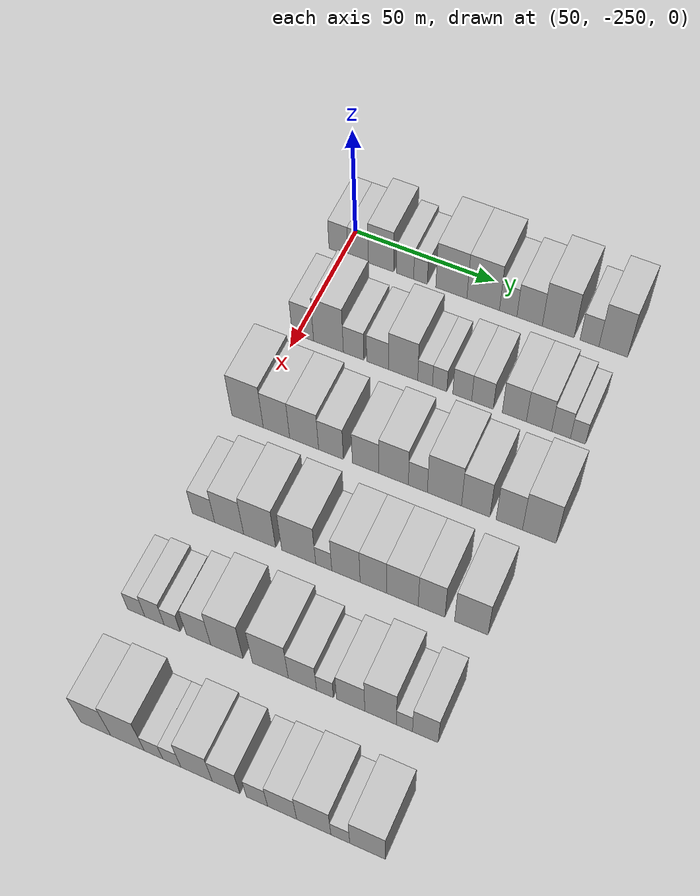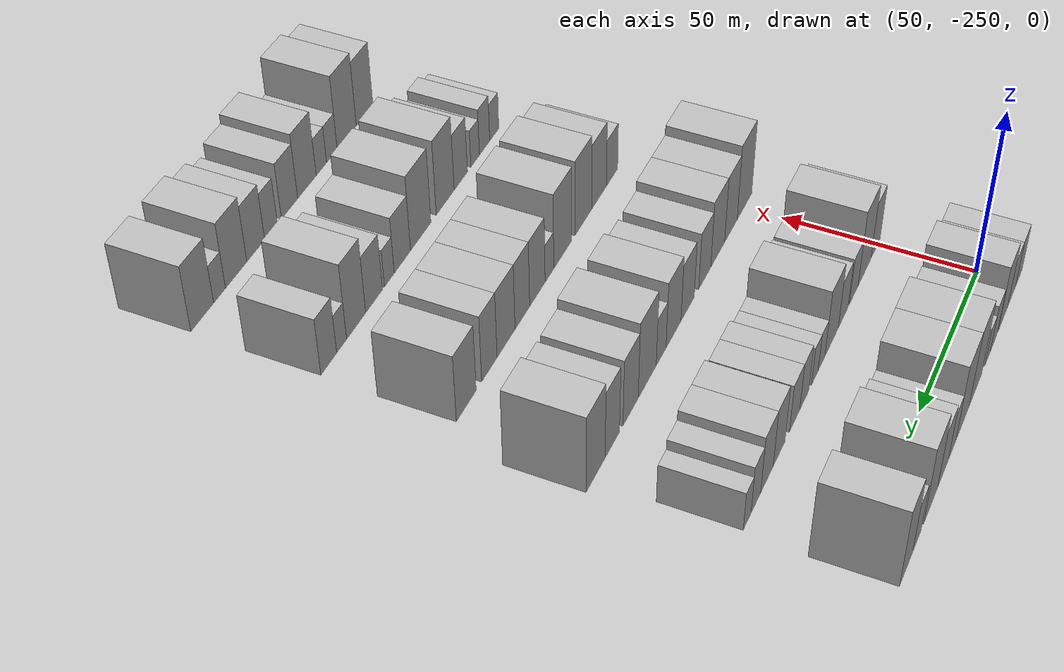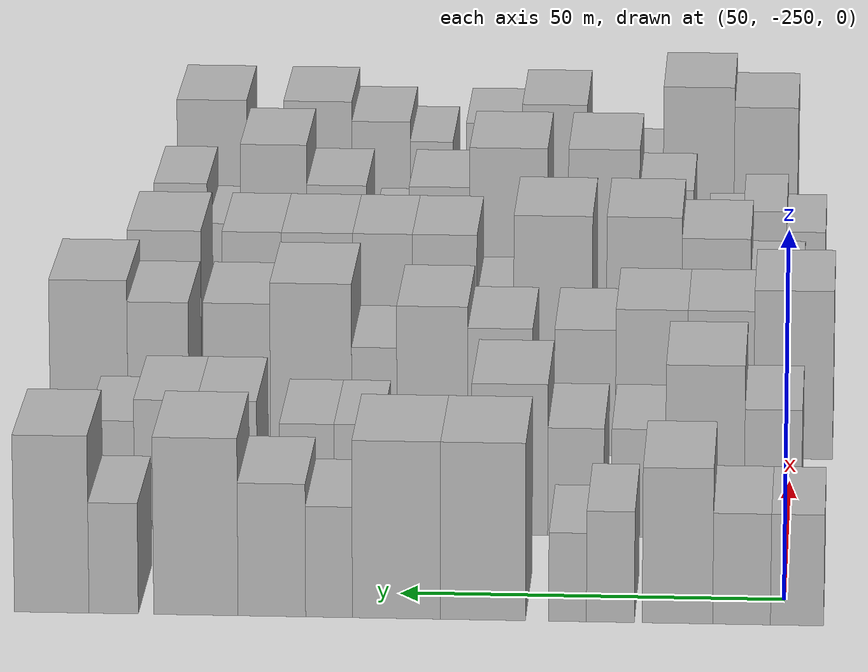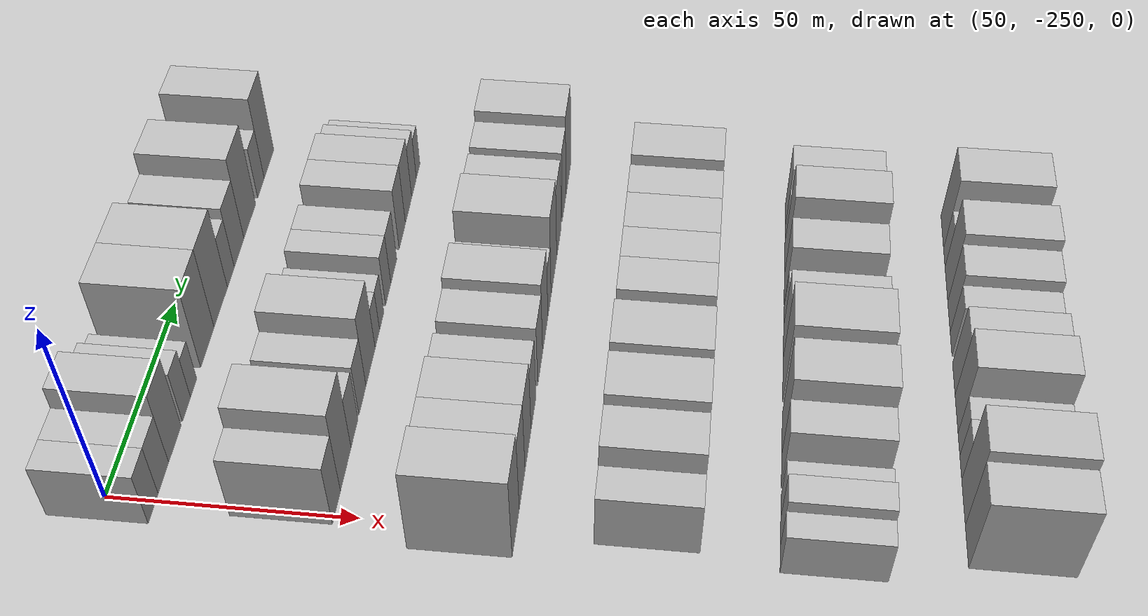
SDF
<sdf version="1.6">
 <world name="default">
  <model name="building_32">
   <static>1</static>
   <pose>50.0000 -251.7144 0 0.000000 0.000000 0.000000</pose>
   <link name="link">
    <pose>0 0 7.50 0 0 0</pose>
    <collision name="collision"><geometry><box><size>20.0000 6.8331 15.0000</size></box></geometry></collision>
    <visual name="visual">
     <cast_shadows>0</cast_shadows>
     <geometry><box><size>20.0000 6.8331 15.0000</size></box></geometry>
     <material>
      <script>
       <uri>model://HANNAS_wall/materials/scripts</uri>
       <uri>model://HANNAS_wall/materials/textures</uri>
       <name>vrc/HANNAS_wall</name>
      </script>
     </material>
    </visual>
   </link>
  </model>
  <model name="building_33">
   <static>1</static>
   <pose>50.0000 -244.5777 0 0.000000 0.000000 0.000000</pose>
   <link name="link">
    <pose>0 0 7.50 0 0 0</pose>
    <collision name="collision"><geometry><box><size>20.0000 7.4403 15.0000</size></box></geometry></collision>
    <visual name="visual">
     <cast_shadows>0</cast_shadows>
     <geometry><box><size>20.0000 7.4403 15.0000</size></box></geometry>
     <material>
      <script>
       <uri>model://HANNAS_wall/materials/scripts</uri>
       <uri>model://HANNAS_wall/materials/textures</uri>
       <name>vrc/HANNAS_wall</name>
      </script>
     </material>
    </visual>
   </link>
  </model>
  <model name="building_34">
   <static>1</static>
   <pose>50.0000 -236.3153 0 0.000000 0.000000 0.000000</pose>
   <link name="link">
    <pose>0 0 10.50 0 0 0</pose>
    <collision name="collision"><geometry><box><size>20.0000 9.0846 21.0000</size></box></geometry></collision>
    <visual name="visual">
     <cast_shadows>0</cast_shadows>
     <geometry><box><size>20.0000 9.0846 21.0000</size></box></geometry>
     <material>
      <script>
       <uri>model://HANNAS_wall/materials/scripts</uri>
       <uri>model://HANNAS_wall/materials/textures</uri>
       <name>vrc/HANNAS_wall</name>
      </script>
     </material>
    </visual>
   </link>
  </model>
  <model name="building_35">
   <static>1</static>
   <pose>50.0000 -227.6796 0 0.000000 0.000000 0.000000</pose>
   <link name="link">
    <pose>0 0 7.50 0 0 0</pose>
    <collision name="collision"><geometry><box><size>20.0000 6.1867 15.0000</size></box></geometry></collision>
    <visual name="visual">
     <cast_shadows>0</cast_shadows>
     <geometry><box><size>20.0000 6.1867 15.0000</size></box></geometry>
     <material>
      <script>
       <uri>model://HANNAS_wall/materials/scripts</uri>
       <uri>model://HANNAS_wall/materials/textures</uri>
       <name>vrc/HANNAS_wall</name>
      </script>
     </material>
    </visual>
   </link>
  </model>
  <model name="building_36">
   <static>1</static>
   <pose>50.0000 -222.1558 0 0.000000 0.000000 0.000000</pose>
   <link name="link">
    <pose>0 0 6.00 0 0 0</pose>
    <collision name="collision"><geometry><box><size>20.0000 4.8609 12.0000</size></box></geometry></collision>
    <visual name="visual">
     <cast_shadows>0</cast_shadows>
     <geometry><box><size>20.0000 4.8609 12.0000</size></box></geometry>
     <material>
      <script>
       <uri>model://HANNAS_wall/materials/scripts</uri>
       <uri>model://HANNAS_wall/materials/textures</uri>
       <name>vrc/HANNAS_wall</name>
      </script>
     </material>
    </visual>
   </link>
  </model>
  <model name="building_37">
   <static>1</static>
   <pose>50.0000 -211.2451 0 0.000000 0.000000 0.000000</pose>
   <link name="link">
    <pose>0 0 12.00 0 0 0</pose>
    <collision name="collision"><geometry><box><size>20.0000 10.9604 24.0000</size></box></geometry></collision>
    <visual name="visual">
     <cast_shadows>0</cast_shadows>
     <geometry><box><size>20.0000 10.9604 24.0000</size></box></geometry>
     <material>
      <script>
       <uri>model://HANNAS_wall/materials/scripts</uri>
       <uri>model://HANNAS_wall/materials/textures</uri>
       <name>vrc/HANNAS_wall</name>
      </script>
     </material>
    </visual>
   </link>
  </model>
  <model name="building_38">
   <static>1</static>
   <pose>50.0000 -200.0655 0 0.000000 0.000000 0.000000</pose>
   <link name="link">
    <pose>0 0 12.00 0 0 0</pose>
    <collision name="collision"><geometry><box><size>20.0000 11.3989 24.0000</size></box></geometry></collision>
    <visual name="visual">
     <cast_shadows>0</cast_shadows>
     <geometry><box><size>20.0000 11.3989 24.0000</size></box></geometry>
     <material>
      <script>
       <uri>model://HANNAS_wall/materials/scripts</uri>
       <uri>model://HANNAS_wall/materials/textures</uri>
       <name>vrc/HANNAS_wall</name>
      </script>
     </material>
    </visual>
   </link>
  </model>
  <model name="building_39">
   <static>1</static>
   <pose>50.0000 -191.3466 0 0.000000 0.000000 0.000000</pose>
   <link name="link">
    <pose>0 0 7.50 0 0 0</pose>
    <collision name="collision"><geometry><box><size>20.0000 6.0390 15.0000</size></box></geometry></collision>
    <visual name="visual">
     <cast_shadows>0</cast_shadows>
     <geometry><box><size>20.0000 6.0390 15.0000</size></box></geometry>
     <material>
      <script>
       <uri>model://HANNAS_wall/materials/scripts</uri>
       <uri>model://HANNAS_wall/materials/textures</uri>
       <name>vrc/HANNAS_wall</name>
      </script>
     </material>
    </visual>
   </link>
  </model>
  <model name="building_40">
   <static>1</static>
   <pose>50.0000 -183.9538 0 0.000000 0.000000 0.000000</pose>
   <link name="link">
    <pose>0 0 9.00 0 0 0</pose>
    <collision name="collision"><geometry><box><size>20.0000 8.7467 18.0000</size></box></geometry></collision>
    <visual name="visual">
     <cast_shadows>0</cast_shadows>
     <geometry><box><size>20.0000 8.7467 18.0000</size></box></geometry>
     <material>
      <script>
       <uri>model://HANNAS_wall/materials/scripts</uri>
       <uri>model://HANNAS_wall/materials/textures</uri>
       <name>vrc/HANNAS_wall</name>
      </script>
     </material>
    </visual>
   </link>
  </model>
  <model name="building_41">
   <static>1</static>
   <pose>50.0000 -174.1147 0 0.000000 0.000000 0.000000</pose>
   <link name="link">
    <pose>0 0 12.00 0 0 0</pose>
    <collision name="collision"><geometry><box><size>20.0000 10.9314 24.0000</size></box></geometry></collision>
    <visual name="visual">
     <cast_shadows>0</cast_shadows>
     <geometry><box><size>20.0000 10.9314 24.0000</size></box></geometry>
     <material>
      <script>
       <uri>model://HANNAS_wall/materials/scripts</uri>
       <uri>model://HANNAS_wall/materials/textures</uri>
       <name>vrc/HANNAS_wall</name>
      </script>
     </material>
    </visual>
   </link>
  </model>
  <model name="building_42">
   <static>1</static>
   <pose>50.0000 -163.4517 0 0.000000 0.000000 0.000000</pose>
   <link name="link">
    <pose>0 0 7.50 0 0 0</pose>
    <collision name="collision"><geometry><box><size>20.0000 6.3946 15.0000</size></box></geometry></collision>
    <visual name="visual">
     <cast_shadows>0</cast_shadows>
     <geometry><box><size>20.0000 6.3946 15.0000</size></box></geometry>
     <material>
      <script>
       <uri>model://HANNAS_wall/materials/scripts</uri>
       <uri>model://HANNAS_wall/materials/textures</uri>
       <name>vrc/HANNAS_wall</name>
      </script>
     </material>
    </visual>
   </link>
  </model>
  <model name="building_43">
   <static>1</static>
   <pose>50.0000 -155.4158 0 0.000000 0.000000 0.000000</pose>
   <link name="link">
    <pose>0 0 12.00 0 0 0</pose>
    <collision name="collision"><geometry><box><size>20.0000 9.6773 24.0000</size></box></geometry></collision>
    <visual name="visual">
     <cast_shadows>0</cast_shadows>
     <geometry><box><size>20.0000 9.6773 24.0000</size></box></geometry>
     <material>
      <script>
       <uri>model://HANNAS_wall/materials/scripts</uri>
       <uri>model://HANNAS_wall/materials/textures</uri>
       <name>vrc/HANNAS_wall</name>
      </script>
     </material>
    </visual>
   </link>
  </model>
  <model name="building_165">
   <static>1</static>
   <pose>85.0000 -248.0324 0 0.000000 0.000000 0.000000</pose>
   <link name="link">
    <pose>0 0 9.00 0 0 0</pose>
    <collision name="collision"><geometry><box><size>20.0000 7.6123 18.0000</size></box></geometry></collision>
    <visual name="visual">
     <cast_shadows>0</cast_shadows>
     <geometry><box><size>20.0000 7.6123 18.0000</size></box></geometry>
     <material>
      <script>
       <uri>model://HANNAS_wall/materials/scripts</uri>
       <uri>model://HANNAS_wall/materials/textures</uri>
       <name>vrc/HANNAS_wall</name>
      </script>
     </material>
    </visual>
   </link>
  </model>
  <model name="building_166">
   <static>1</static>
   <pose>85.0000 -238.9923 0 0.000000 0.000000 0.000000</pose>
   <link name="link">
    <pose>0 0 12.00 0 0 0</pose>
    <collision name="collision"><geometry><box><size>20.0000 10.4679 24.0000</size></box></geometry></collision>
    <visual name="visual">
     <cast_shadows>0</cast_shadows>
     <geometry><box><size>20.0000 10.4679 24.0000</size></box></geometry>
     <material>
      <script>
       <uri>model://HANNAS_wall/materials/scripts</uri>
       <uri>model://HANNAS_wall/materials/textures</uri>
       <name>vrc/HANNAS_wall</name>
      </script>
     </material>
    </visual>
   </link>
  </model>
  <model name="building_167">
   <static>1</static>
   <pose>85.0000 -230.1876 0 0.000000 0.000000 0.000000</pose>
   <link name="link">
    <pose>0 0 7.50 0 0 0</pose>
    <collision name="collision"><geometry><box><size>20.0000 7.1414 15.0000</size></box></geometry></collision>
    <visual name="visual">
     <cast_shadows>0</cast_shadows>
     <geometry><box><size>20.0000 7.1414 15.0000</size></box></geometry>
     <material>
      <script>
       <uri>model://HANNAS_wall/materials/scripts</uri>
       <uri>model://HANNAS_wall/materials/textures</uri>
       <name>vrc/HANNAS_wall</name>
      </script>
     </material>
    </visual>
   </link>
  </model>
  <model name="building_168">
   <static>1</static>
   <pose>85.0000 -221.8783 0 0.000000 0.000000 0.000000</pose>
   <link name="link">
    <pose>0 0 7.50 0 0 0</pose>
    <collision name="collision"><geometry><box><size>20.0000 7.4772 15.0000</size></box></geometry></collision>
    <visual name="visual">
     <cast_shadows>0</cast_shadows>
     <geometry><box><size>20.0000 7.4772 15.0000</size></box></geometry>
     <material>
      <script>
       <uri>model://HANNAS_wall/materials/scripts</uri>
       <uri>model://HANNAS_wall/materials/textures</uri>
       <name>vrc/HANNAS_wall</name>
      </script>
     </material>
    </visual>
   </link>
  </model>
  <model name="building_169">
   <static>1</static>
   <pose>85.0000 -213.0782 0 0.000000 0.000000 0.000000</pose>
   <link name="link">
    <pose>0 0 10.50 0 0 0</pose>
    <collision name="collision"><geometry><box><size>20.0000 10.1231 21.0000</size></box></geometry></collision>
    <visual name="visual">
     <cast_shadows>0</cast_shadows>
     <geometry><box><size>20.0000 10.1231 21.0000</size></box></geometry>
     <material>
      <script>
       <uri>model://HANNAS_wall/materials/scripts</uri>
       <uri>model://HANNAS_wall/materials/textures</uri>
       <name>vrc/HANNAS_wall</name>
      </script>
     </material>
    </visual>
   </link>
  </model>
  <model name="building_170">
   <static>1</static>
   <pose>85.0000 -205.4918 0 0.000000 0.000000 0.000000</pose>
   <link name="link">
    <pose>0 0 6.00 0 0 0</pose>
    <collision name="collision"><geometry><box><size>20.0000 5.0495 12.0000</size></box></geometry></collision>
    <visual name="visual">
     <cast_shadows>0</cast_shadows>
     <geometry><box><size>20.0000 5.0495 12.0000</size></box></geometry>
     <material>
      <script>
       <uri>model://HANNAS_wall/materials/scripts</uri>
       <uri>model://HANNAS_wall/materials/textures</uri>
       <name>vrc/HANNAS_wall</name>
      </script>
     </material>
    </visual>
   </link>
  </model>
  <model name="building_171">
   <static>1</static>
   <pose>85.0000 -200.5235 0 0.000000 0.000000 0.000000</pose>
   <link name="link">
    <pose>0 0 6.00 0 0 0</pose>
    <collision name="collision"><geometry><box><size>20.0000 4.8871 12.0000</size></box></geometry></collision>
    <visual name="visual">
     <cast_shadows>0</cast_shadows>
     <geometry><box><size>20.0000 4.8871 12.0000</size></box></geometry>
     <material>
      <script>
       <uri>model://HANNAS_wall/materials/scripts</uri>
       <uri>model://HANNAS_wall/materials/textures</uri>
       <name>vrc/HANNAS_wall</name>
      </script>
     </material>
    </visual>
   </link>
  </model>
  <model name="building_172">
   <static>1</static>
   <pose>85.0000 -192.8807 0 0.000000 0.000000 0.000000</pose>
   <link name="link">
    <pose>0 0 7.50 0 0 0</pose>
    <collision name="collision"><geometry><box><size>20.0000 6.3985 15.0000</size></box></geometry></collision>
    <visual name="visual">
     <cast_shadows>0</cast_shadows>
     <geometry><box><size>20.0000 6.3985 15.0000</size></box></geometry>
     <material>
      <script>
       <uri>model://HANNAS_wall/materials/scripts</uri>
       <uri>model://HANNAS_wall/materials/textures</uri>
       <name>vrc/HANNAS_wall</name>
      </script>
     </material>
    </visual>
   </link>
  </model>
  <model name="building_173">
   <static>1</static>
   <pose>85.0000 -186.0462 0 0.000000 0.000000 0.000000</pose>
   <link name="link">
    <pose>0 0 7.50 0 0 0</pose>
    <collision name="collision"><geometry><box><size>20.0000 7.2704 15.0000</size></box></geometry></collision>
    <visual name="visual">
     <cast_shadows>0</cast_shadows>
     <geometry><box><size>20.0000 7.2704 15.0000</size></box></geometry>
     <material>
      <script>
       <uri>model://HANNAS_wall/materials/scripts</uri>
       <uri>model://HANNAS_wall/materials/textures</uri>
       <name>vrc/HANNAS_wall</name>
      </script>
     </material>
    </visual>
   </link>
  </model>
  <model name="building_174">
   <static>1</static>
   <pose>85.0000 -175.4038 0 0.000000 0.000000 0.000000</pose>
   <link name="link">
    <pose>0 0 9.00 0 0 0</pose>
    <collision name="collision"><geometry><box><size>20.0000 8.0144 18.0000</size></box></geometry></collision>
    <visual name="visual">
     <cast_shadows>0</cast_shadows>
     <geometry><box><size>20.0000 8.0144 18.0000</size></box></geometry>
     <material>
      <script>
       <uri>model://HANNAS_wall/materials/scripts</uri>
       <uri>model://HANNAS_wall/materials/textures</uri>
       <name>vrc/HANNAS_wall</name>
      </script>
     </material>
    </visual>
   </link>
  </model>
  <model name="building_175">
   <static>1</static>
   <pose>85.0000 -167.2117 0 0.000000 0.000000 0.000000</pose>
   <link name="link">
    <pose>0 0 9.00 0 0 0</pose>
    <collision name="collision"><geometry><box><size>20.0000 8.3697 18.0000</size></box></geometry></collision>
    <visual name="visual">
     <cast_shadows>0</cast_shadows>
     <geometry><box><size>20.0000 8.3697 18.0000</size></box></geometry>
     <material>
      <script>
       <uri>model://HANNAS_wall/materials/scripts</uri>
       <uri>model://HANNAS_wall/materials/textures</uri>
       <name>vrc/HANNAS_wall</name>
      </script>
     </material>
    </visual>
   </link>
  </model>
  <model name="building_176">
   <static>1</static>
   <pose>85.0000 -159.9130 0 0.000000 0.000000 0.000000</pose>
   <link name="link">
    <pose>0 0 7.50 0 0 0</pose>
    <collision name="collision"><geometry><box><size>20.0000 6.2277 15.0000</size></box></geometry></collision>
    <visual name="visual">
     <cast_shadows>0</cast_shadows>
     <geometry><box><size>20.0000 6.2277 15.0000</size></box></geometry>
     <material>
      <script>
       <uri>model://HANNAS_wall/materials/scripts</uri>
       <uri>model://HANNAS_wall/materials/textures</uri>
       <name>vrc/HANNAS_wall</name>
      </script>
     </material>
    </visual>
   </link>
  </model>
  <model name="building_177">
   <static>1</static>
   <pose>85.0000 -154.3391 0 0.000000 0.000000 0.000000</pose>
   <link name="link">
    <pose>0 0 6.00 0 0 0</pose>
    <collision name="collision"><geometry><box><size>20.0000 4.9201 12.0000</size></box></geometry></collision>
    <visual name="visual">
     <cast_shadows>0</cast_shadows>
     <geometry><box><size>20.0000 4.9201 12.0000</size></box></geometry>
     <material>
      <script>
       <uri>model://HANNAS_wall/materials/scripts</uri>
       <uri>model://HANNAS_wall/materials/textures</uri>
       <name>vrc/HANNAS_wall</name>
      </script>
     </material>
    </visual>
   </link>
  </model>
  <model name="building_299">
   <static>1</static>
   <pose>120.0000 -250.2972 0 0.000000 0.000000 0.000000</pose>
   <link name="link">
    <pose>0 0 12.00 0 0 0</pose>
    <collision name="collision"><geometry><box><size>20.0000 10.8491 24.0000</size></box></geometry></collision>
    <visual name="visual">
     <cast_shadows>0</cast_shadows>
     <geometry><box><size>20.0000 10.8491 24.0000</size></box></geometry>
     <material>
      <script>
       <uri>model://HANNAS_wall/materials/scripts</uri>
       <uri>model://HANNAS_wall/materials/textures</uri>
       <name>vrc/HANNAS_wall</name>
      </script>
     </material>
    </visual>
   </link>
  </model>
  <model name="building_300">
   <static>1</static>
   <pose>120.0000 -240.3386 0 0.000000 0.000000 0.000000</pose>
   <link name="link">
    <pose>0 0 10.50 0 0 0</pose>
    <collision name="collision"><geometry><box><size>20.0000 9.0683 21.0000</size></box></geometry></collision>
    <visual name="visual">
     <cast_shadows>0</cast_shadows>
     <geometry><box><size>20.0000 9.0683 21.0000</size></box></geometry>
     <material>
      <script>
       <uri>model://HANNAS_wall/materials/scripts</uri>
       <uri>model://HANNAS_wall/materials/textures</uri>
       <name>vrc/HANNAS_wall</name>
      </script>
     </material>
    </visual>
   </link>
  </model>
  <model name="building_301">
   <static>1</static>
   <pose>120.0000 -230.8886 0 0.000000 0.000000 0.000000</pose>
   <link name="link">
    <pose>0 0 10.50 0 0 0</pose>
    <collision name="collision"><geometry><box><size>20.0000 9.8317 21.0000</size></box></geometry></collision>
    <visual name="visual">
     <cast_shadows>0</cast_shadows>
     <geometry><box><size>20.0000 9.8317 21.0000</size></box></geometry>
     <material>
      <script>
       <uri>model://HANNAS_wall/materials/scripts</uri>
       <uri>model://HANNAS_wall/materials/textures</uri>
       <name>vrc/HANNAS_wall</name>
      </script>
     </material>
    </visual>
   </link>
  </model>
  <model name="building_302">
   <static>1</static>
   <pose>120.0000 -221.7825 0 0.000000 0.000000 0.000000</pose>
   <link name="link">
    <pose>0 0 9.00 0 0 0</pose>
    <collision name="collision"><geometry><box><size>20.0000 8.3805 18.0000</size></box></geometry></collision>
    <visual name="visual">
     <cast_shadows>0</cast_shadows>
     <geometry><box><size>20.0000 8.3805 18.0000</size></box></geometry>
     <material>
      <script>
       <uri>model://HANNAS_wall/materials/scripts</uri>
       <uri>model://HANNAS_wall/materials/textures</uri>
       <name>vrc/HANNAS_wall</name>
      </script>
     </material>
    </visual>
   </link>
  </model>
  <model name="building_303">
   <static>1</static>
   <pose>120.0000 -210.1530 0 0.000000 0.000000 0.000000</pose>
   <link name="link">
    <pose>0 0 9.00 0 0 0</pose>
    <collision name="collision"><geometry><box><size>20.0000 8.8785 18.0000</size></box></geometry></collision>
    <visual name="visual">
     <cast_shadows>0</cast_shadows>
     <geometry><box><size>20.0000 8.8785 18.0000</size></box></geometry>
     <material>
      <script>
       <uri>model://HANNAS_wall/materials/scripts</uri>
       <uri>model://HANNAS_wall/materials/textures</uri>
       <name>vrc/HANNAS_wall</name>
      </script>
     </material>
    </visual>
   </link>
  </model>
  <model name="building_304">
   <static>1</static>
   <pose>120.0000 -200.8392 0 0.000000 0.000000 0.000000</pose>
   <link name="link">
    <pose>0 0 10.50 0 0 0</pose>
    <collision name="collision"><geometry><box><size>20.0000 9.7490 21.0000</size></box></geometry></collision>
    <visual name="visual">
     <cast_shadows>0</cast_shadows>
     <geometry><box><size>20.0000 9.7490 21.0000</size></box></geometry>
     <material>
      <script>
       <uri>model://HANNAS_wall/materials/scripts</uri>
       <uri>model://HANNAS_wall/materials/textures</uri>
       <name>vrc/HANNAS_wall</name>
      </script>
     </material>
    </visual>
   </link>
  </model>
  <model name="building_305">
   <static>1</static>
   <pose>120.0000 -192.8650 0 0.000000 0.000000 0.000000</pose>
   <link name="link">
    <pose>0 0 7.50 0 0 0</pose>
    <collision name="collision"><geometry><box><size>20.0000 6.1994 15.0000</size></box></geometry></collision>
    <visual name="visual">
     <cast_shadows>0</cast_shadows>
     <geometry><box><size>20.0000 6.1994 15.0000</size></box></geometry>
     <material>
      <script>
       <uri>model://HANNAS_wall/materials/scripts</uri>
       <uri>model://HANNAS_wall/materials/textures</uri>
       <name>vrc/HANNAS_wall</name>
      </script>
     </material>
    </visual>
   </link>
  </model>
  <model name="building_306">
   <static>1</static>
   <pose>120.0000 -184.1727 0 0.000000 0.000000 0.000000</pose>
   <link name="link">
    <pose>0 0 12.00 0 0 0</pose>
    <collision name="collision"><geometry><box><size>20.0000 11.1850 24.0000</size></box></geometry></collision>
    <visual name="visual">
     <cast_shadows>0</cast_shadows>
     <geometry><box><size>20.0000 11.1850 24.0000</size></box></geometry>
     <material>
      <script>
       <uri>model://HANNAS_wall/materials/scripts</uri>
       <uri>model://HANNAS_wall/materials/textures</uri>
       <name>vrc/HANNAS_wall</name>
      </script>
     </material>
    </visual>
   </link>
  </model>
  <model name="building_307">
   <static>1</static>
   <pose>120.0000 -173.9789 0 0.000000 0.000000 0.000000</pose>
   <link name="link">
    <pose>0 0 10.50 0 0 0</pose>
    <collision name="collision"><geometry><box><size>20.0000 9.2027 21.0000</size></box></geometry></collision>
    <visual name="visual">
     <cast_shadows>0</cast_shadows>
     <geometry><box><size>20.0000 9.2027 21.0000</size></box></geometry>
     <material>
      <script>
       <uri>model://HANNAS_wall/materials/scripts</uri>
       <uri>model://HANNAS_wall/materials/textures</uri>
       <name>vrc/HANNAS_wall</name>
      </script>
     </material>
    </visual>
   </link>
  </model>
  <model name="building_308">
   <static>1</static>
   <pose>120.0000 -163.1730 0 0.000000 0.000000 0.000000</pose>
   <link name="link">
    <pose>0 0 10.50 0 0 0</pose>
    <collision name="collision"><geometry><box><size>20.0000 8.4091 21.0000</size></box></geometry></collision>
    <visual name="visual">
     <cast_shadows>0</cast_shadows>
     <geometry><box><size>20.0000 8.4091 21.0000</size></box></geometry>
     <material>
      <script>
       <uri>model://HANNAS_wall/materials/scripts</uri>
       <uri>model://HANNAS_wall/materials/textures</uri>
       <name>vrc/HANNAS_wall</name>
      </script>
     </material>
    </visual>
   </link>
  </model>
  <model name="building_309">
   <static>1</static>
   <pose>120.0000 -153.6084 0 0.000000 0.000000 0.000000</pose>
   <link name="link">
    <pose>0 0 12.00 0 0 0</pose>
    <collision name="collision"><geometry><box><size>20.0000 10.7200 24.0000</size></box></geometry></collision>
    <visual name="visual">
     <cast_shadows>0</cast_shadows>
     <geometry><box><size>20.0000 10.7200 24.0000</size></box></geometry>
     <material>
      <script>
       <uri>model://HANNAS_wall/materials/scripts</uri>
       <uri>model://HANNAS_wall/materials/textures</uri>
       <name>vrc/HANNAS_wall</name>
      </script>
     </material>
    </visual>
   </link>
  </model>
  <model name="building_422">
   <static>1</static>
   <pose>155.0000 -247.5163 0 0.000000 0.000000 0.000000</pose>
   <link name="link">
    <pose>0 0 7.50 0 0 0</pose>
    <collision name="collision"><geometry><box><size>20.0000 7.4893 15.0000</size></box></geometry></collision>
    <visual name="visual">
     <cast_shadows>0</cast_shadows>
     <geometry><box><size>20.0000 7.4893 15.0000</size></box></geometry>
     <material>
      <script>
       <uri>model://HANNAS_wall/materials/scripts</uri>
       <uri>model://HANNAS_wall/materials/textures</uri>
       <name>vrc/HANNAS_wall</name>
      </script>
     </material>
    </visual>
   </link>
  </model>
  <model name="building_423">
   <static>1</static>
   <pose>155.0000 -238.9331 0 0.000000 0.000000 0.000000</pose>
   <link name="link">
    <pose>0 0 10.50 0 0 0</pose>
    <collision name="collision"><geometry><box><size>20.0000 9.6772 21.0000</size></box></geometry></collision>
    <visual name="visual">
     <cast_shadows>0</cast_shadows>
     <geometry><box><size>20.0000 9.6772 21.0000</size></box></geometry>
     <material>
      <script>
       <uri>model://HANNAS_wall/materials/scripts</uri>
       <uri>model://HANNAS_wall/materials/textures</uri>
       <name>vrc/HANNAS_wall</name>
      </script>
     </material>
    </visual>
   </link>
  </model>
  <model name="building_424">
   <static>1</static>
   <pose>155.0000 -228.8019 0 0.000000 0.000000 0.000000</pose>
   <link name="link">
    <pose>0 0 12.00 0 0 0</pose>
    <collision name="collision"><geometry><box><size>20.0000 10.5852 24.0000</size></box></geometry></collision>
    <visual name="visual">
     <cast_shadows>0</cast_shadows>
     <geometry><box><size>20.0000 10.5852 24.0000</size></box></geometry>
     <material>
      <script>
       <uri>model://HANNAS_wall/materials/scripts</uri>
       <uri>model://HANNAS_wall/materials/textures</uri>
       <name>vrc/HANNAS_wall</name>
      </script>
     </material>
    </visual>
   </link>
  </model>
  <model name="building_425">
   <static>1</static>
   <pose>155.0000 -215.9623 0 0.000000 0.000000 0.000000</pose>
   <link name="link">
    <pose>0 0 12.00 0 0 0</pose>
    <collision name="collision"><geometry><box><size>20.0000 11.0940 24.0000</size></box></geometry></collision>
    <visual name="visual">
     <cast_shadows>0</cast_shadows>
     <geometry><box><size>20.0000 11.0940 24.0000</size></box></geometry>
     <material>
      <script>
       <uri>model://HANNAS_wall/materials/scripts</uri>
       <uri>model://HANNAS_wall/materials/textures</uri>
       <name>vrc/HANNAS_wall</name>
      </script>
     </material>
    </visual>
   </link>
  </model>
  <model name="building_426">
   <static>1</static>
   <pose>155.0000 -207.8113 0 0.000000 0.000000 0.000000</pose>
   <link name="link">
    <pose>0 0 6.00 0 0 0</pose>
    <collision name="collision"><geometry><box><size>20.0000 5.2079 12.0000</size></box></geometry></collision>
    <visual name="visual">
     <cast_shadows>0</cast_shadows>
     <geometry><box><size>20.0000 5.2079 12.0000</size></box></geometry>
     <material>
      <script>
       <uri>model://HANNAS_wall/materials/scripts</uri>
       <uri>model://HANNAS_wall/materials/textures</uri>
       <name>vrc/HANNAS_wall</name>
      </script>
     </material>
    </visual>
   </link>
  </model>
  <model name="building_427">
   <static>1</static>
   <pose>155.0000 -200.6531 0 0.000000 0.000000 0.000000</pose>
   <link name="link">
    <pose>0 0 10.50 0 0 0</pose>
    <collision name="collision"><geometry><box><size>20.0000 9.1087 21.0000</size></box></geometry></collision>
    <visual name="visual">
     <cast_shadows>0</cast_shadows>
     <geometry><box><size>20.0000 9.1087 21.0000</size></box></geometry>
     <material>
      <script>
       <uri>model://HANNAS_wall/materials/scripts</uri>
       <uri>model://HANNAS_wall/materials/textures</uri>
       <name>vrc/HANNAS_wall</name>
      </script>
     </material>
    </visual>
   </link>
  </model>
  <model name="building_428">
   <static>1</static>
   <pose>155.0000 -191.8842 0 0.000000 0.000000 0.000000</pose>
   <link name="link">
    <pose>0 0 10.50 0 0 0</pose>
    <collision name="collision"><geometry><box><size>20.0000 8.4291 21.0000</size></box></geometry></collision>
    <visual name="visual">
     <cast_shadows>0</cast_shadows>
     <geometry><box><size>20.0000 8.4291 21.0000</size></box></geometry>
     <material>
      <script>
       <uri>model://HANNAS_wall/materials/scripts</uri>
       <uri>model://HANNAS_wall/materials/textures</uri>
       <name>vrc/HANNAS_wall</name>
      </script>
     </material>
    </visual>
   </link>
  </model>
  <model name="building_429">
   <static>1</static>
   <pose>155.0000 -182.6408 0 0.000000 0.000000 0.000000</pose>
   <link name="link">
    <pose>0 0 10.50 0 0 0</pose>
    <collision name="collision"><geometry><box><size>20.0000 10.0576 21.0000</size></box></geometry></collision>
    <visual name="visual">
     <cast_shadows>0</cast_shadows>
     <geometry><box><size>20.0000 10.0576 21.0000</size></box></geometry>
     <material>
      <script>
       <uri>model://HANNAS_wall/materials/scripts</uri>
       <uri>model://HANNAS_wall/materials/textures</uri>
       <name>vrc/HANNAS_wall</name>
      </script>
     </material>
    </visual>
   </link>
  </model>
  <model name="building_430">
   <static>1</static>
   <pose>155.0000 -173.4113 0 0.000000 0.000000 0.000000</pose>
   <link name="link">
    <pose>0 0 10.50 0 0 0</pose>
    <collision name="collision"><geometry><box><size>20.0000 8.4014 21.0000</size></box></geometry></collision>
    <visual name="visual">
     <cast_shadows>0</cast_shadows>
     <geometry><box><size>20.0000 8.4014 21.0000</size></box></geometry>
     <material>
      <script>
       <uri>model://HANNAS_wall/materials/scripts</uri>
       <uri>model://HANNAS_wall/materials/textures</uri>
       <name>vrc/HANNAS_wall</name>
      </script>
     </material>
    </visual>
   </link>
  </model>
  <model name="building_431">
   <static>1</static>
   <pose>155.0000 -160.9996 0 0.000000 0.000000 0.000000</pose>
   <link name="link">
    <pose>0 0 10.50 0 0 0</pose>
    <collision name="collision"><geometry><box><size>20.0000 10.4220 21.0000</size></box></geometry></collision>
    <visual name="visual">
     <cast_shadows>0</cast_shadows>
     <geometry><box><size>20.0000 10.4220 21.0000</size></box></geometry>
     <material>
      <script>
       <uri>model://HANNAS_wall/materials/scripts</uri>
       <uri>model://HANNAS_wall/materials/textures</uri>
       <name>vrc/HANNAS_wall</name>
      </script>
     </material>
    </visual>
   </link>
  </model>
  <model name="building_551">
   <static>1</static>
   <pose>190.0000 -251.2293 0 0.000000 0.000000 0.000000</pose>
   <link name="link">
    <pose>0 0 6.00 0 0 0</pose>
    <collision name="collision"><geometry><box><size>20.0000 5.6603 12.0000</size></box></geometry></collision>
    <visual name="visual">
     <cast_shadows>0</cast_shadows>
     <geometry><box><size>20.0000 5.6603 12.0000</size></box></geometry>
     <material>
      <script>
       <uri>model://HANNAS_wall/materials/scripts</uri>
       <uri>model://HANNAS_wall/materials/textures</uri>
       <name>vrc/HANNAS_wall</name>
      </script>
     </material>
    </visual>
   </link>
  </model>
  <model name="building_552">
   <static>1</static>
   <pose>190.0000 -245.2674 0 0.000000 0.000000 0.000000</pose>
   <link name="link">
    <pose>0 0 7.50 0 0 0</pose>
    <collision name="collision"><geometry><box><size>20.0000 6.2636 15.0000</size></box></geometry></collision>
    <visual name="visual">
     <cast_shadows>0</cast_shadows>
     <geometry><box><size>20.0000 6.2636 15.0000</size></box></geometry>
     <material>
      <script>
       <uri>model://HANNAS_wall/materials/scripts</uri>
       <uri>model://HANNAS_wall/materials/textures</uri>
       <name>vrc/HANNAS_wall</name>
      </script>
     </material>
    </visual>
   </link>
  </model>
  <model name="building_553">
   <static>1</static>
   <pose>190.0000 -239.5304 0 0.000000 0.000000 0.000000</pose>
   <link name="link">
    <pose>0 0 6.00 0 0 0</pose>
    <collision name="collision"><geometry><box><size>20.0000 5.2104 12.0000</size></box></geometry></collision>
    <visual name="visual">
     <cast_shadows>0</cast_shadows>
     <geometry><box><size>20.0000 5.2104 12.0000</size></box></geometry>
     <material>
      <script>
       <uri>model://HANNAS_wall/materials/scripts</uri>
       <uri>model://HANNAS_wall/materials/textures</uri>
       <name>vrc/HANNAS_wall</name>
      </script>
     </material>
    </visual>
   </link>
  </model>
  <model name="building_554">
   <static>1</static>
   <pose>190.0000 -230.9997 0 0.000000 0.000000 0.000000</pose>
   <link name="link">
    <pose>0 0 9.00 0 0 0</pose>
    <collision name="collision"><geometry><box><size>20.0000 7.8511 18.0000</size></box></geometry></collision>
    <visual name="visual">
     <cast_shadows>0</cast_shadows>
     <geometry><box><size>20.0000 7.8511 18.0000</size></box></geometry>
     <material>
      <script>
       <uri>model://HANNAS_wall/materials/scripts</uri>
       <uri>model://HANNAS_wall/materials/textures</uri>
       <name>vrc/HANNAS_wall</name>
      </script>
     </material>
    </visual>
   </link>
  </model>
  <model name="building_555">
   <static>1</static>
   <pose>190.0000 -221.9102 0 0.000000 0.000000 0.000000</pose>
   <link name="link">
    <pose>0 0 12.00 0 0 0</pose>
    <collision name="collision"><geometry><box><size>20.0000 10.3279 24.0000</size></box></geometry></collision>
    <visual name="visual">
     <cast_shadows>0</cast_shadows>
     <geometry><box><size>20.0000 10.3279 24.0000</size></box></geometry>
     <material>
      <script>
       <uri>model://HANNAS_wall/materials/scripts</uri>
       <uri>model://HANNAS_wall/materials/textures</uri>
       <name>vrc/HANNAS_wall</name>
      </script>
     </material>
    </visual>
   </link>
  </model>
  <model name="building_556">
   <static>1</static>
   <pose>190.0000 -208.0811 0 0.000000 0.000000 0.000000</pose>
   <link name="link">
    <pose>0 0 12.00 0 0 0</pose>
    <collision name="collision"><geometry><box><size>20.0000 11.3302 24.0000</size></box></geometry></collision>
    <visual name="visual">
     <cast_shadows>0</cast_shadows>
     <geometry><box><size>20.0000 11.3302 24.0000</size></box></geometry>
     <material>
      <script>
       <uri>model://HANNAS_wall/materials/scripts</uri>
       <uri>model://HANNAS_wall/materials/textures</uri>
       <name>vrc/HANNAS_wall</name>
      </script>
     </material>
    </visual>
   </link>
  </model>
  <model name="building_557">
   <static>1</static>
   <pose>190.0000 -198.0124 0 0.000000 0.000000 0.000000</pose>
   <link name="link">
    <pose>0 0 9.00 0 0 0</pose>
    <collision name="collision"><geometry><box><size>20.0000 8.8071 18.0000</size></box></geometry></collision>
    <visual name="visual">
     <cast_shadows>0</cast_shadows>
     <geometry><box><size>20.0000 8.8071 18.0000</size></box></geometry>
     <material>
      <script>
       <uri>model://HANNAS_wall/materials/scripts</uri>
       <uri>model://HANNAS_wall/materials/textures</uri>
       <name>vrc/HANNAS_wall</name>
      </script>
     </material>
    </visual>
   </link>
  </model>
  <model name="building_558">
   <static>1</static>
   <pose>190.0000 -190.9980 0 0.000000 0.000000 0.000000</pose>
   <link name="link">
    <pose>0 0 6.00 0 0 0</pose>
    <collision name="collision"><geometry><box><size>20.0000 5.2217 12.0000</size></box></geometry></collision>
    <visual name="visual">
     <cast_shadows>0</cast_shadows>
     <geometry><box><size>20.0000 5.2217 12.0000</size></box></geometry>
     <material>
      <script>
       <uri>model://HANNAS_wall/materials/scripts</uri>
       <uri>model://HANNAS_wall/materials/textures</uri>
       <name>vrc/HANNAS_wall</name>
      </script>
     </material>
    </visual>
   </link>
  </model>
  <model name="building_559">
   <static>1</static>
   <pose>190.0000 -183.0506 0 0.000000 0.000000 0.000000</pose>
   <link name="link">
    <pose>0 0 9.00 0 0 0</pose>
    <collision name="collision"><geometry><box><size>20.0000 8.6731 18.0000</size></box></geometry></collision>
    <visual name="visual">
     <cast_shadows>0</cast_shadows>
     <geometry><box><size>20.0000 8.6731 18.0000</size></box></geometry>
     <material>
      <script>
       <uri>model://HANNAS_wall/materials/scripts</uri>
       <uri>model://HANNAS_wall/materials/textures</uri>
       <name>vrc/HANNAS_wall</name>
      </script>
     </material>
    </visual>
   </link>
  </model>
  <model name="building_560">
   <static>1</static>
   <pose>190.0000 -173.8981 0 0.000000 0.000000 0.000000</pose>
   <link name="link">
    <pose>0 0 12.00 0 0 0</pose>
    <collision name="collision"><geometry><box><size>20.0000 9.6318 24.0000</size></box></geometry></collision>
    <visual name="visual">
     <cast_shadows>0</cast_shadows>
     <geometry><box><size>20.0000 9.6318 24.0000</size></box></geometry>
     <material>
      <script>
       <uri>model://HANNAS_wall/materials/scripts</uri>
       <uri>model://HANNAS_wall/materials/textures</uri>
       <name>vrc/HANNAS_wall</name>
      </script>
     </material>
    </visual>
   </link>
  </model>
  <model name="building_561">
   <static>1</static>
   <pose>190.0000 -166.6436 0 0.000000 0.000000 0.000000</pose>
   <link name="link">
    <pose>0 0 6.00 0 0 0</pose>
    <collision name="collision"><geometry><box><size>20.0000 4.8773 12.0000</size></box></geometry></collision>
    <visual name="visual">
     <cast_shadows>0</cast_shadows>
     <geometry><box><size>20.0000 4.8773 12.0000</size></box></geometry>
     <material>
      <script>
       <uri>model://HANNAS_wall/materials/scripts</uri>
       <uri>model://HANNAS_wall/materials/textures</uri>
       <name>vrc/HANNAS_wall</name>
      </script>
     </material>
    </visual>
   </link>
  </model>
  <model name="building_562">
   <static>1</static>
   <pose>190.0000 -160.3414 0 0.000000 0.000000 0.000000</pose>
   <link name="link">
    <pose>0 0 9.00 0 0 0</pose>
    <collision name="collision"><geometry><box><size>20.0000 7.7271 18.0000</size></box></geometry></collision>
    <visual name="visual">
     <cast_shadows>0</cast_shadows>
     <geometry><box><size>20.0000 7.7271 18.0000</size></box></geometry>
     <material>
      <script>
       <uri>model://HANNAS_wall/materials/scripts</uri>
       <uri>model://HANNAS_wall/materials/textures</uri>
       <name>vrc/HANNAS_wall</name>
      </script>
     </material>
    </visual>
   </link>
  </model>
  <model name="building_676">
   <static>1</static>
   <pose>225.0000 -244.8778 0 0.000000 0.000000 0.000000</pose>
   <link name="link">
    <pose>0 0 10.50 0 0 0</pose>
    <collision name="collision"><geometry><box><size>20.0000 9.4706 21.0000</size></box></geometry></collision>
    <visual name="visual">
     <cast_shadows>0</cast_shadows>
     <geometry><box><size>20.0000 9.4706 21.0000</size></box></geometry>
     <material>
      <script>
       <uri>model://HANNAS_wall/materials/scripts</uri>
       <uri>model://HANNAS_wall/materials/textures</uri>
       <name>vrc/HANNAS_wall</name>
      </script>
     </material>
    </visual>
   </link>
  </model>
  <model name="building_677">
   <static>1</static>
   <pose>225.0000 -234.8515 0 0.000000 0.000000 0.000000</pose>
   <link name="link">
    <pose>0 0 12.00 0 0 0</pose>
    <collision name="collision"><geometry><box><size>20.0000 10.5820 24.0000</size></box></geometry></collision>
    <visual name="visual">
     <cast_shadows>0</cast_shadows>
     <geometry><box><size>20.0000 10.5820 24.0000</size></box></geometry>
     <material>
      <script>
       <uri>model://HANNAS_wall/materials/scripts</uri>
       <uri>model://HANNAS_wall/materials/textures</uri>
       <name>vrc/HANNAS_wall</name>
      </script>
     </material>
    </visual>
   </link>
  </model>
  <model name="building_678">
   <static>1</static>
   <pose>225.0000 -226.6688 0 0.000000 0.000000 0.000000</pose>
   <link name="link">
    <pose>0 0 6.00 0 0 0</pose>
    <collision name="collision"><geometry><box><size>20.0000 5.7833 12.0000</size></box></geometry></collision>
    <visual name="visual">
     <cast_shadows>0</cast_shadows>
     <geometry><box><size>20.0000 5.7833 12.0000</size></box></geometry>
     <material>
      <script>
       <uri>model://HANNAS_wall/materials/scripts</uri>
       <uri>model://HANNAS_wall/materials/textures</uri>
       <name>vrc/HANNAS_wall</name>
      </script>
     </material>
    </visual>
   </link>
  </model>
  <model name="building_679">
   <static>1</static>
   <pose>225.0000 -220.9911 0 0.000000 0.000000 0.000000</pose>
   <link name="link">
    <pose>0 0 6.00 0 0 0</pose>
    <collision name="collision"><geometry><box><size>20.0000 5.5720 12.0000</size></box></geometry></collision>
    <visual name="visual">
     <cast_shadows>0</cast_shadows>
     <geometry><box><size>20.0000 5.5720 12.0000</size></box></geometry>
     <material>
      <script>
       <uri>model://HANNAS_wall/materials/scripts</uri>
       <uri>model://HANNAS_wall/materials/textures</uri>
       <name>vrc/HANNAS_wall</name>
      </script>
     </material>
    </visual>
   </link>
  </model>
  <model name="building_680">
   <static>1</static>
   <pose>225.0000 -213.3584 0 0.000000 0.000000 0.000000</pose>
   <link name="link">
    <pose>0 0 10.50 0 0 0</pose>
    <collision name="collision"><geometry><box><size>20.0000 9.6934 21.0000</size></box></geometry></collision>
    <visual name="visual">
     <cast_shadows>0</cast_shadows>
     <geometry><box><size>20.0000 9.6934 21.0000</size></box></geometry>
     <material>
      <script>
       <uri>model://HANNAS_wall/materials/scripts</uri>
       <uri>model://HANNAS_wall/materials/textures</uri>
       <name>vrc/HANNAS_wall</name>
      </script>
     </material>
    </visual>
   </link>
  </model>
  <model name="building_681">
   <static>1</static>
   <pose>225.0000 -204.3191 0 0.000000 0.000000 0.000000</pose>
   <link name="link">
    <pose>0 0 9.00 0 0 0</pose>
    <collision name="collision"><geometry><box><size>20.0000 8.3853 18.0000</size></box></geometry></collision>
    <visual name="visual">
     <cast_shadows>0</cast_shadows>
     <geometry><box><size>20.0000 8.3853 18.0000</size></box></geometry>
     <material>
      <script>
       <uri>model://HANNAS_wall/materials/scripts</uri>
       <uri>model://HANNAS_wall/materials/textures</uri>
       <name>vrc/HANNAS_wall</name>
      </script>
     </material>
    </visual>
   </link>
  </model>
  <model name="building_682">
   <static>1</static>
   <pose>225.0000 -194.9297 0 0.000000 0.000000 0.000000</pose>
   <link name="link">
    <pose>0 0 7.50 0 0 0</pose>
    <collision name="collision"><geometry><box><size>20.0000 6.3935 15.0000</size></box></geometry></collision>
    <visual name="visual">
     <cast_shadows>0</cast_shadows>
     <geometry><box><size>20.0000 6.3935 15.0000</size></box></geometry>
     <material>
      <script>
       <uri>model://HANNAS_wall/materials/scripts</uri>
       <uri>model://HANNAS_wall/materials/textures</uri>
       <name>vrc/HANNAS_wall</name>
      </script>
     </material>
    </visual>
   </link>
  </model>
  <model name="building_683">
   <static>1</static>
   <pose>225.0000 -187.3740 0 0.000000 0.000000 0.000000</pose>
   <link name="link">
    <pose>0 0 9.00 0 0 0</pose>
    <collision name="collision"><geometry><box><size>20.0000 8.7179 18.0000</size></box></geometry></collision>
    <visual name="visual">
     <cast_shadows>0</cast_shadows>
     <geometry><box><size>20.0000 8.7179 18.0000</size></box></geometry>
     <material>
      <script>
       <uri>model://HANNAS_wall/materials/scripts</uri>
       <uri>model://HANNAS_wall/materials/textures</uri>
       <name>vrc/HANNAS_wall</name>
      </script>
     </material>
    </visual>
   </link>
  </model>
  <model name="building_684">
   <static>1</static>
   <pose>225.0000 -177.9254 0 0.000000 0.000000 0.000000</pose>
   <link name="link">
    <pose>0 0 10.50 0 0 0</pose>
    <collision name="collision"><geometry><box><size>20.0000 10.1793 21.0000</size></box></geometry></collision>
    <visual name="visual">
     <cast_shadows>0</cast_shadows>
     <geometry><box><size>20.0000 10.1793 21.0000</size></box></geometry>
     <material>
      <script>
       <uri>model://HANNAS_wall/materials/scripts</uri>
       <uri>model://HANNAS_wall/materials/textures</uri>
       <name>vrc/HANNAS_wall</name>
      </script>
     </material>
    </visual>
   </link>
  </model>
  <model name="building_685">
   <static>1</static>
   <pose>225.0000 -170.0691 0 0.000000 0.000000 0.000000</pose>
   <link name="link">
    <pose>0 0 6.00 0 0 0</pose>
    <collision name="collision"><geometry><box><size>20.0000 5.5333 12.0000</size></box></geometry></collision>
    <visual name="visual">
     <cast_shadows>0</cast_shadows>
     <geometry><box><size>20.0000 5.5333 12.0000</size></box></geometry>
     <material>
      <script>
       <uri>model://HANNAS_wall/materials/scripts</uri>
       <uri>model://HANNAS_wall/materials/textures</uri>
       <name>vrc/HANNAS_wall</name>
      </script>
     </material>
    </visual>
   </link>
  </model>
  <model name="building_686">
   <static>1</static>
   <pose>225.0000 -162.0779 0 0.000000 0.000000 0.000000</pose>
   <link name="link">
    <pose>0 0 10.50 0 0 0</pose>
    <collision name="collision"><geometry><box><size>20.0000 10.4491 21.0000</size></box></geometry></collision>
    <visual name="visual">
     <cast_shadows>0</cast_shadows>
     <geometry><box><size>20.0000 10.4491 21.0000</size></box></geometry>
     <material>
      <script>
       <uri>model://HANNAS_wall/materials/scripts</uri>
       <uri>model://HANNAS_wall/materials/textures</uri>
       <name>vrc/HANNAS_wall</name>
      </script>
     </material>
    </visual>
   </link>
  </model>
 </world>
</sdf>
